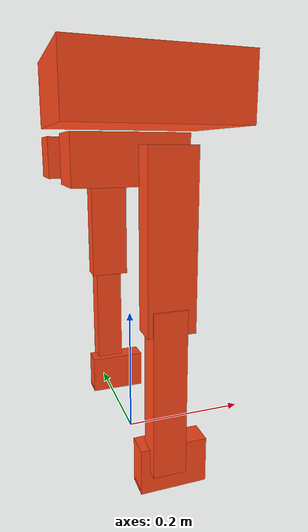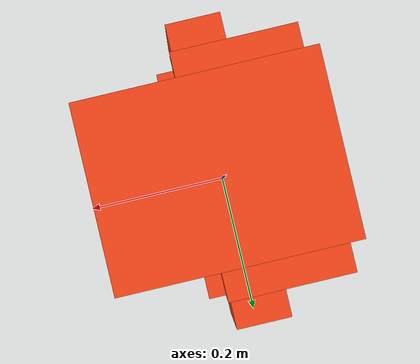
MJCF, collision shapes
<mujoco model="dodo_daimao">
  <default>
    <default class="robot">
      <default class="motor">
        <joint />
        <motor />
      </default>
      <default class="visual">
        <geom material="visualgeom" contype="0" conaffinity="0" group="2" />
      </default>
      <default class="collision">
        <geom material="collision_material" condim="3" contype="0" conaffinity="1" priority="1" group="1" solref="0.005 1" solimp="0.99 0.999 1e-05" friction="1 0.01 0.01" />
      </default>
    </default>
  </default>

  <compiler angle="radian" />

  <asset>
    <material name="body_mat" rgba="0.752941176470588 0.752941176470588 0.752941176470588 1" />
    <material name="hip_r_mat" rgba="0.792156862745098 0.819607843137255 0.933333333333333 1" />
    <material name="upper_leg_r_mat" rgba="0.79216 0.81961 0.93333 1" />
    <material name="hip_l_mat" rgba="1 1 1 1" />
    <material name="upper_leg_l_mat" rgba="0.298039215686275 0.298039215686275 0.298039215686275 1" />
    <material name="default_material" rgba="0.7 0.7 0.7 1" />
    <material name="collision_material" rgba="1.0 0.28 0.1 0.9" />
    <mesh name="body.STL" file="../meshes/body.STL" />
    <mesh name="hip_right.STL" file="../meshes/hip_right.STL" />
    <mesh name="upper_leg_right.STL" file="../meshes/upper_leg_right.STL" />
    <mesh name="lower_leg_right.STL" file="../meshes/lower_leg_right.STL" />
    <mesh name="foot_right.STL" file="../meshes/foot_right.STL" />
    <mesh name="foot_sole_right.STL" file="../meshes/foot_sole_right.STL" />
    <mesh name="hip_left.STL" file="../meshes/hip_left.STL" />
    <mesh name="upper_leg_left.STL" file="../meshes/upper_leg_left.STL" />
    <mesh name="lower_leg_left.STL" file="../meshes/lower_leg_left.STL" />
    <mesh name="foot_left.STL" file="../meshes/foot_left.STL" />
    <mesh name="foot_sole_left.STL" file="../meshes/foot_sole_left.STL" />
  </asset>

  <worldbody>
    <body name="body" pos="0.00000000 0.00000000 0.44680100" quat="1 0 0 0" childclass="robot">
      <freejoint name="floating_base" />
      <geom name="body_collision" pos="0.02 0 0.095" quat="1.0 0.0 0.0 0.0" type="box" size="0.135 0.105 0.05" class="collision" />
      <geom name="body_visual" pos="0 0 0" quat="1.0 0.0 0.0 0.0" material="body_mat" type="mesh" mesh="body.STL" class="visual" />
      <body name="hip_right" pos="-0.00075001 -0.093876 0" quat="1.0 0.0 0.0 0.0">
        <joint name="hip_right" type="hinge" ref="0.0" class="motor" range="-0.35 0.35" axis="1 0 0" />
        <inertial pos="-0.00935959180540419 -0.0120580540612954 -4.61678384464537E-05" quat="1.0 0.0 0.0 0.0" mass="0.428645410212592" diaginertia="0.000176489626110945 0.00018242553146269 0.000179181141560814" />
        <geom name="hip_right_collision" pos="-0.035 -0.012 0.0" quat="1.0 0.0 0.0 0.0" type="box" size="0.075 0.04 0.0325" class="collision" />
        <geom name="hip_right_visual" pos="0 0 0" quat="1.0 0.0 0.0 0.0" material="hip_r_mat" type="mesh" mesh="hip_right.STL" class="visual" />
        <body name="upper_leg_right" pos="0 -0.0515 0" quat="1.0 0.0 0.0 0.0">
          <joint name="upper_leg_right" type="hinge" ref="0.0" class="motor" range="-1.57 1.57" axis="0 1 0" />
          <inertial pos="0.00051642 8.2938E-05 -0.038008" quat="1.0 0.0 0.0 0.0" mass="0.13997" diaginertia="0.00021774 0.00023578 2.1634e-05" />
          <geom name="upper_leg_right_collision" pos="0.005 -0.0165 -0.1" quat="1.0 0.0 0.0 0.0" type="box" size="0.0325 0.0175 0.1175" class="collision" />
          <geom name="upper_leg_right_visual" pos="0 0 0" quat="1.0 0.0 0.0 0.0" material="upper_leg_r_mat" type="mesh" mesh="upper_leg_right.STL" class="visual" />
          <body name="lower_leg_right" pos="0.02 0 -0.199" quat="1.0 0.0 0.0 0.0">
            <joint name="lower_leg_right" type="hinge" ref="0.0" class="motor" range="-3.1416 1.3963" axis="0 1 0" />
            <inertial pos="-0.01587610149621 -0.00929187493498879 -0.074124892377313" quat="1.0 0.0 0.0 0.0" mass="0.0729947991135356" diaginertia="0.000132637231144206 0.000142573634138813 1.25647330319124e-05" />
            <geom name="lower_leg_right_collision" pos="-0.018 -0.0185 -0.10" quat="1.0 0.0 0.0 0.0" type="box" size="0.023 0.0185 0.115" class="collision" />
            <geom name="lower_leg_right_visual" pos="0 0 0" quat="1.0 0.0 0.0 0.0" material="body_mat" type="mesh" mesh="lower_leg_right.STL" class="visual" />
            <body name="foot_right" pos="-0.02 0 -0.199" quat="1.0 0.0 0.0 0.0">
              <joint name="foot_right" type="hinge" ref="0.0" class="motor" range="-1.05 1.57" axis="0 1 0" />
              <inertial pos="0.0094579 -0.0031616 -0.017361" quat="1.0 0.0 0.0 0.0" mass="0.035804" diaginertia="7.6539e-06 2.1846e-05 1.9541e-05" />
              <geom name="foot_right_collision" pos="0.014 -0.005 -0.016" quat="1.0 0.0 0.0 0.0" type="box" size="0.0475 0.017 0.03275" class="collision" />
              <geom name="foot_right_visual" pos="0 0 0" quat="1.0 0.0 0.0 0.0" material="upper_leg_r_mat" type="mesh" mesh="foot_right.STL" class="visual" />
              <body name="foot_sole_right" pos="0.01367 -0.0045502 -0.048801" quat="1.0 0.0 0.0 0.0">
                <inertial pos="-1.73472347597681E-17 0 0.00567169872058571" quat="1.0 0.0 0.0 0.0" mass="0.0250241854392981" diaginertia="1.87120561716279e-06 1.90049094994832e-05 2.05068417159572e-05" />
                <geom name="foot_sole_right_collision" pos="0.0 0.0 0.0032" quat="1.0 0.0 0.0 0.0" type="box" size="0.0475 0.011 0.0025" class="collision" />
                <geom name="foot_sole_right_visual" pos="0 0 0" quat="1.0 0.0 0.0 0.0" material="hip_r_mat" type="mesh" mesh="foot_sole_right.STL" class="visual" />
                <site name="right_foot" pos="0 0 0" rgba="1 0 0 1" />
              </body>
            </body>
          </body>
        </body>
      </body>
      <body name="hip_left" pos="-0.00075 0.093876 0" quat="1.0 0.0 0.0 0.0">
        <joint name="hip_left" type="hinge" ref="0.0" class="motor" range="-0.35 0.35" axis="1 0 0" />
        <inertial pos="-0.00935959180540419 0.0120580540612954 -4.61678384464537E-05" quat="1.0 0.0 0.0 0.0" mass="0.428645410212592" diaginertia="0.000176489626110945 0.00018242553146269 0.000179181141560814" />
        <geom name="hip_left_collision" pos="-0.035 0.012 0.0" quat="1.0 0.0 0.0 0.0" type="box" size="0.075 0.04 0.0325" class="collision" />
        <geom name="hip_left_visual" pos="0 0 0" quat="1.0 0.0 0.0 0.0" material="hip_l_mat" type="mesh" mesh="hip_left.STL" class="visual" />
        <body name="upper_leg_left" pos="0 0.0515 0" quat="1.0 0.0 0.0 0.0">
          <joint name="upper_leg_left" type="hinge" ref="0.0" class="motor" range="-1.57 1.57" axis="0 1 0" />
          <inertial pos="0.000470359983009524 -0.000104870920080047 -0.0379958460267216" quat="1.0 0.0 0.0 0.0" mass="0.13997" diaginertia="0.000217276164901289 0.00023534518749094 2.16682097797681e-05" />
          <geom name="upper_leg_left_collision" pos="0.005 0.0165 -0.1" quat="1.0 0.0 0.0 0.0" type="box" size="0.0325 0.0175 0.1175" class="collision" />
          <geom name="upper_leg_left_visual" pos="0 0 0" quat="1.0 0.0 0.0 0.0" material="upper_leg_l_mat" type="mesh" mesh="upper_leg_left.STL" class="visual" />
          <body name="lower_leg_left" pos="0.02 0 -0.199" quat="1.0 0.0 0.0 0.0">
            <joint name="lower_leg_left" type="hinge" ref="0.0" class="motor" range="-3.1416 1.3963" axis="0 1 0" />
            <inertial pos="-0.0159332626475034 0.00934367799883778 -0.0741182203680711" quat="1.0 0.0 0.0 0.0" mass="0.0729947991135356" diaginertia="0.000132603326187729 0.000142575081640039 1.26000800700448e-05" />
            <geom name="lower_leg_left_collision" pos="-0.018 0.0185 -0.10" quat="1.0 0.0 0.0 0.0" type="box" size="0.023 0.0185 0.115" class="collision" />
            <geom name="lower_leg_left_visual" pos="0 0 0" quat="1.0 0.0 0.0 0.0" material="body_mat" type="mesh" mesh="lower_leg_left.STL" class="visual" />
            <body name="foot_left" pos="-0.02 0 -0.199" quat="1.0 0.0 0.0 0.0">
              <joint name="foot_left" type="hinge" ref="0.0" class="motor" range="-1.05 1.57" axis="0 1 0" />
              <inertial pos="0.0094578881133146 0.00323178176396433 -0.0173612508209276" quat="1.0 0.0 0.0 0.0" mass="0.035804" diaginertia="7.65386250473635e-06 2.18460376730125e-05 1.95413933051716e-05" />
              <geom name="foot_left_collision" pos="0.014 0.005 -0.016" quat="1.0 0.0 0.0 0.0" type="box" size="0.0475 0.017 0.03275" class="collision" />
              <geom name="foot_left_visual" pos="0 0 0" quat="1.0 0.0 0.0 0.0" material="hip_r_mat" type="mesh" mesh="foot_left.STL" class="visual" />
              <body name="foot_sole_left" pos="0.0136701751849855 0.00459982071533604 -0.0488007300265155" quat="1.0 0.0 0.0 0.0">
                <inertial pos="-1.04083408558608E-17 2.77555756156289E-17 0.00567169872058565" quat="1.0 0.0 0.0 0.0" mass="0.0250241854392981" diaginertia="1.87123587595229e-06 1.90048792406936e-05 2.05068417159572e-05" />
                <geom name="foot_sole_left_collision" pos="0.0 0.0 0.0032" quat="1.0 0.0 0.0 0.0" type="box" size="0.0475 0.011 0.0025" class="collision" />
                <geom name="foot_sole_left_visual" pos="0 0 0" quat="1.0 0.0 0.0 0.0" material="hip_r_mat" type="mesh" mesh="foot_sole_left.STL" class="visual" />
                <site name="left_foot" pos="0 0 0" rgba="1 0 0 1" />
              </body>
            </body>
          </body>
        </body>
      </body>
      <site name="imu" pos="0 0 0" quat="1 0 0 0" />
      <camera name="front_camera" mode="track" fovy="90.0" quat="4.329780281177467e-17 4.329780281177466e-17 0.7071067811865475 0.7071067811865476" pos="0.0 2.0 0.5" />
      <camera name="side_camera" mode="track" fovy="90.0" quat="-0.5 -0.4999999999999999 0.5 0.5000000000000001" pos="-2.0 0.0 0.5" />
    </body>
  </worldbody>

  <contact>
    <exclude body1="body" body2="hip_right" />
    <exclude body1="hip_right" body2="upper_leg_right" />
    <exclude body1="upper_leg_right" body2="lower_leg_right" />
    <exclude body1="lower_leg_right" body2="foot_right" />
    <exclude body1="foot_right" body2="foot_sole_right" />
    <exclude body1="body" body2="hip_left" />
    <exclude body1="hip_left" body2="upper_leg_left" />
    <exclude body1="upper_leg_left" body2="lower_leg_left" />
    <exclude body1="lower_leg_left" body2="foot_left" />
    <exclude body1="foot_left" body2="foot_sole_left" />
  </contact>

  <sensor>
    <gyro name="imu_ang_vel" site="imu" />
    <velocimeter name="imu_lin_vel" site="imu" />
    <accelerometer name="imu_lin_acc" site="imu" />
    <subtreeangmom name="root_angmom" body="body" />
  </sensor>
</mujoco>
